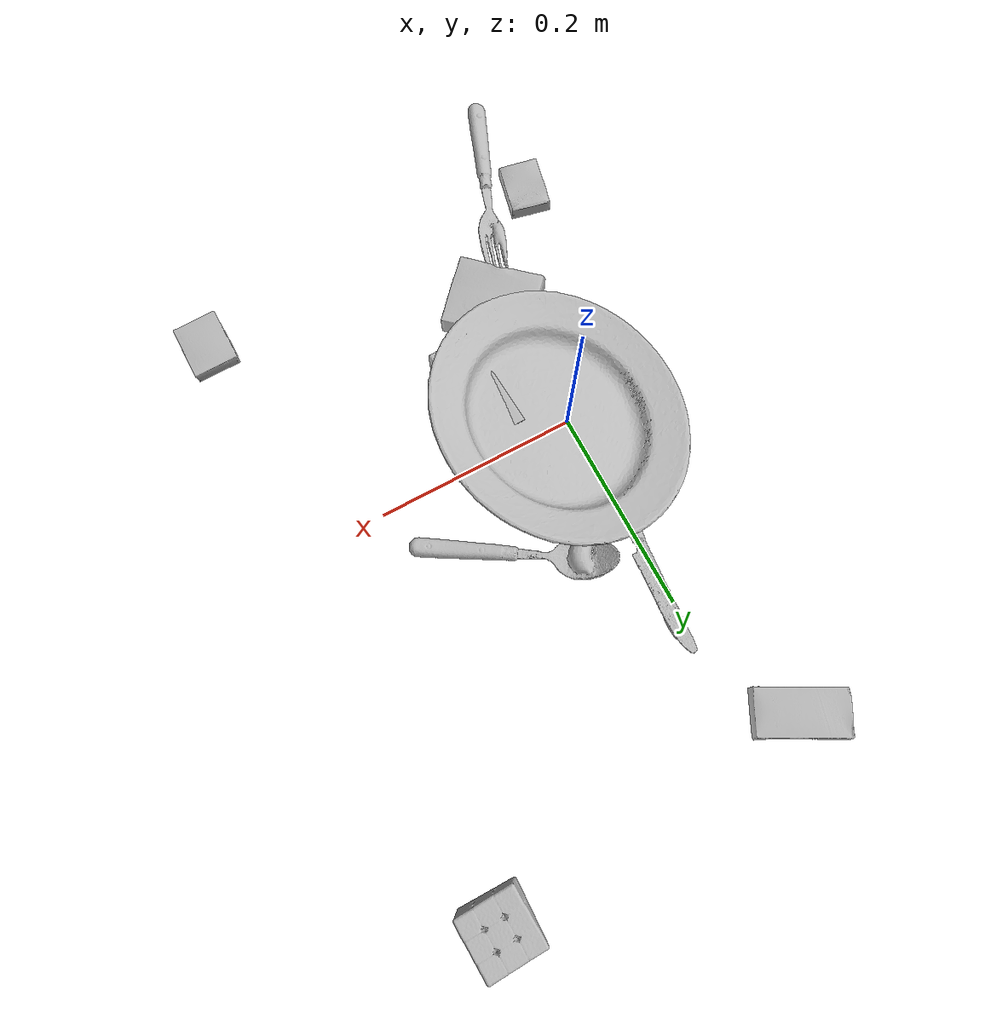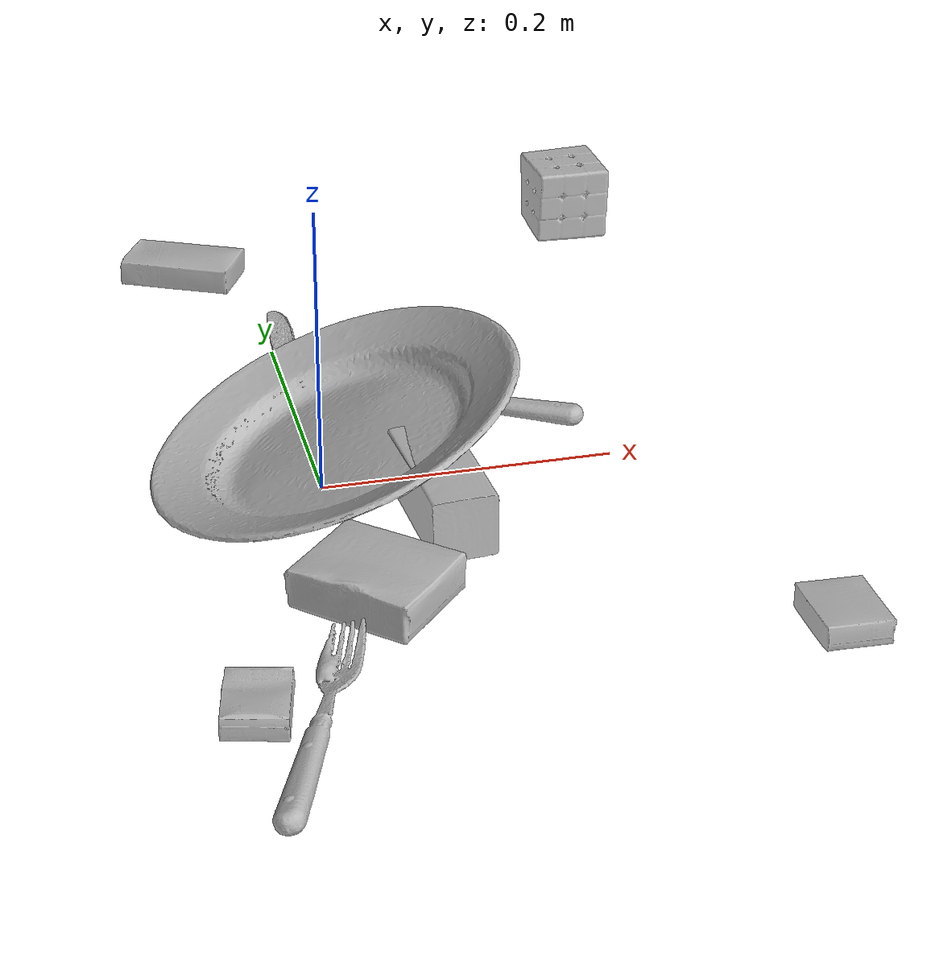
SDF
<sdf version="1.4">
  <world name="default">
    <light name="light1" type="point">
      <pose>0 0 1 0 0 0</pose>
      <diffuse>3 3 3 1</diffuse>
      <specular>3 3 3 1</specular>
    </light>
    <light name="light2" type="point">
      <pose>0 0.5 2 0 0 0</pose>
      <diffuse>1 1 1 1</diffuse>
      <specular>1 1 1 1</specular>
    </light>
    <light name="light3" type="point">
      <pose>0 0.5 2 0 0 0</pose>
      <diffuse>3 3 3 1</diffuse>
      <specular>3 3 3 1</specular>
    </light>
    <scene>
      <ambient>0.7 0.7 0.7</ambient>
    </scene>
    <model name="box11">
      <link name="link_box11">
        <collision name="default">
          <geometry>
            <mesh>
              <uri>model://gelatin_box/collision_meshes/collision.obj</uri>
              <scale>1.0 1.0 1.0</scale>
            </mesh>
          </geometry>
          <surface>
            <friction>
              <ode>
                <mu>0.5</mu>
                <mu2>0.5</mu2>
              </ode>
            </friction>
          <contact>
        <ode>
            <max_vel>0</max_vel>
            <min_depth>0.0001</min_depth>
            <kp>1e8</kp>
        </ode>
    </contact></surface>
        </collision>
        <visual name="default">
          <geometry>
            <mesh>
              <uri>model://gelatin_box/visual_meshes/visual.dae</uri>
              <scale>1.0 1.0 1.0</scale>
            </mesh>
          </geometry>
        </visual>
        <inertial>
          <mass>0.25029057264328003</mass>
          <pose>0.0004319618456065655 0.00011156871914863586 -0.0003640321083366871 -0.0010503719874808634 -0.004755820553863559 0.01644055760983946</pose>
          <inertia>
            <ixx>0.00017668474</ixx>
            <iyy>0.000126205</iyy>
            <izz>0.00026895347</izz>
            <ixy>0</ixy>
            <ixz>0</ixz>
            <iyz>0</iyz>
          </inertia>
        </inertial>
      </link>
      <pose>0.00785162951797247 -0.13989460468292236 0.015168306417763233 0.005597503431318101 -0.0073046120928929315 -2.3266884368835656</pose>
    </model>
    <model name="box12">
      <link name="link_box12">
        <collision name="default">
          <geometry>
            <mesh>
              <uri>model://rubiks_cube/collision_meshes/collision.obj</uri>
              <scale>1.0 1.0 1.0</scale>
            </mesh>
          </geometry>
          <surface>
            <friction>
              <ode>
                <mu>0.5</mu>
                <mu2>0.5</mu2>
              </ode>
            </friction>
          <contact>
        <ode>
            <max_vel>0</max_vel>
            <min_depth>0.0001</min_depth>
            <kp>1e8</kp>
        </ode>
    </contact></surface>
        </collision>
        <visual name="default">
          <geometry>
            <mesh>
              <uri>model://rubiks_cube/visual_meshes/visual.dae</uri>
              <scale>1.0 1.0 1.0</scale>
            </mesh>
          </geometry>
        </visual>
        <inertial>
          <mass>0.21638615429401398</mass>
          <pose>2.6721043468569405e-05 5.2569666877388954e-05 -7.264316536748083e-06 -0.054671974778446215 -0.0981397652693683 -0.03445575269454635</pose>
          <inertia>
            <ixx>0.00011956789</ixx>
            <iyy>0.00011901029</iyy>
            <izz>0.00012055871</izz>
            <ixy>0</ixy>
            <ixz>0</ixz>
            <iyz>0</iyz>
          </inertia>
        </inertial>
      </link>
      <pose>0.2703460156917572 0.36891719698905945 0.028678948059678078 -3.7550410050518016e-06 -1.2646129962153262e-06 1.6015671220579588</pose>
    </model>
    <model name="box13">
      <link name="link_box13">
        <collision name="default">
          <geometry>
            <mesh>
              <uri>model://pudding_box/collision_meshes/collision.obj</uri>
              <scale>0.5 0.5 0.5</scale>
            </mesh>
          </geometry>
          <surface>
            <friction>
              <ode>
                <mu>0.5</mu>
                <mu2>0.5</mu2>
              </ode>
            </friction>
          <contact>
        <ode>
            <max_vel>0</max_vel>
            <min_depth>0.0001</min_depth>
            <kp>1e8</kp>
        </ode>
    </contact></surface>
        </collision>
        <visual name="default">
          <geometry>
            <mesh>
              <uri>model://pudding_box/visual_meshes/visual.dae</uri>
              <scale>0.5 0.5 0.5</scale>
            </mesh>
          </geometry>
        </visual>
        <inertial>
          <mass>0.024692855775356293</mass>
          <pose>0.00024474109522998333 0.00040339428232982755 -0.0002594413817860186 0.005213102294063647 -0.006603794537377036 0.020079827031592012</pose>
          <inertia>
            <ixx>6.9785e-06</ixx>
            <iyy>4.695185e-06</iyy>
            <izz>1.030558e-05</izz>
            <ixy>0</ixy>
            <ixz>0</ixz>
            <iyz>0</iyz>
          </inertia>
        </inertial>
      </link>
      <pose>0.2776681184768677 -0.23407530784606934 0.009862902574241161 0.022349734692141302 -0.011390910028828163 -3.1414140519862666</pose>
    </model>
    <model name="box21">
      <link name="link_box21">
        <collision name="default">
          <geometry>
            <mesh>
              <uri>model://wood_block/collision_meshes/collision.obj</uri>
              <scale>0.5 0.5 0.5</scale>
            </mesh>
          </geometry>
          <surface>
            <friction>
              <ode>
                <mu>0.5</mu>
                <mu2>0.5</mu2>
              </ode>
            </friction>
          <contact>
        <ode>
            <max_vel>0</max_vel>
            <min_depth>0.0001</min_depth>
            <kp>1e8</kp>
        </ode>
    </contact></surface>
        </collision>
        <visual name="default">
          <geometry>
            <mesh>
              <uri>model://wood_block/visual_meshes/visual.dae</uri>
              <scale>0.5 0.5 0.5</scale>
            </mesh>
          </geometry>
        </visual>
        <inertial>
          <mass>0.2621258497238159</mass>
          <pose>-2.9066577553749084e-06 -0.000285404734313488 0.00013204291462898254 -0.05220799390803197 -0.005192696360797016 -0.006861376940793837</pose>
          <inertia>
            <ixx>8.7691005e-05</ixx>
            <iyy>0.00027701593</iyy>
            <izz>0.00027597975</izz>
            <ixy>0</ixy>
            <ixz>0</ixz>
            <iyz>0</iyz>
          </inertia>
        </inertial>
      </link>
      <pose>0.06877264380455017 -0.058406632393598557 0.022629575803875923 -0.005256568899896703 0.0057251442459172 1.6407323502353273</pose>
    </model>
    <model name="box22">
      <link name="link_box22">
        <collision name="default">
          <geometry>
            <mesh>
              <uri>model://cracker_box/collision_meshes/collision.obj</uri>
              <scale>0.25 0.25 0.25</scale>
            </mesh>
          </geometry>
          <surface>
            <friction>
              <ode>
                <mu>0.5</mu>
                <mu2>0.5</mu2>
              </ode>
            </friction>
          <contact>
        <ode>
            <max_vel>0</max_vel>
            <min_depth>0.0001</min_depth>
            <kp>1e8</kp>
        </ode>
    </contact></surface>
        </collision>
        <visual name="default">
          <geometry>
            <mesh>
              <uri>model://cracker_box/visual_meshes/visual.dae</uri>
              <scale>0.25 0.25 0.25</scale>
            </mesh>
          </geometry>
        </visual>
        <inertial>
          <mass>0.04544714838266373</mass>
          <pose>0.0002366049593547359 6.358561950037256e-05 -0.0004257383698131889 -0.0003162075981767565 -0.011106493326025165 0.0025467940711340945</pose>
          <inertia>
            <ixx>7.224829e-06</ixx>
            <iyy>1.1929612e-05</iyy>
            <izz>1.702465e-05</izz>
            <ixy>0</ixy>
            <ixz>0</ixz>
            <iyz>0</iyz>
          </inertia>
        </inertial>
      </link>
      <pose>-0.08311299234628677 -0.24315905570983887 0.009096027351915836 -0.01405103756281322 -0.005016021710679996 -1.7899990964521861</pose>
    </model>
    <model name="box23">
      <link name="link_box23">
        <collision name="default">
          <geometry>
            <mesh>
              <uri>model://sugar_box/collision_meshes/collision.obj</uri>
              <scale>0.5 0.5 0.5</scale>
            </mesh>
          </geometry>
          <surface>
            <friction>
              <ode>
                <mu>0.5</mu>
                <mu2>0.5</mu2>
              </ode>
            </friction>
          <contact>
        <ode>
            <max_vel>0</max_vel>
            <min_depth>0.0001</min_depth>
            <kp>1e8</kp>
        </ode>
    </contact></surface>
        </collision>
        <visual name="default">
          <geometry>
            <mesh>
              <uri>model://sugar_box/visual_meshes/visual.dae</uri>
              <scale>0.5 0.5 0.5</scale>
            </mesh>
          </geometry>
        </visual>
        <inertial>
          <mass>0.08974423259496689</mass>
          <pose>0.0005171863595023751 1.924554817378521e-05 -0.00018182402709499002 -0.00040462647498757867 0.0010506636387592515 0.0026153785559760484</pose>
          <inertia>
            <ixx>1.869366e-05</ixx>
            <iyy>6.0421757e-05</iyy>
            <izz>7.233205e-05</izz>
            <ixy>0</ixy>
            <ixz>0</ixz>
            <iyz>0</iyz>
          </inertia>
        </inertial>
      </link>
      <pose>-0.047081731259822845 0.3397361934185028 0.011399299837648869 0.0007754417692254751 -0.023433283202476674 -0.49534472452894335</pose>
    </model>
    <model name="plate1">
      <link name="link_plate1">
        <collision name="default">
          <geometry>
            <mesh>
              <uri>model://plate/collision_meshes/collision.obj</uri>
              <scale>1.0 1.0 1.0</scale>
            </mesh>
          </geometry>
          <surface>
            <friction>
              <ode>
                <mu>0.5</mu>
                <mu2>0.5</mu2>
              </ode>
            </friction>
          <contact>
        <ode>
            <max_vel>0</max_vel>
            <min_depth>0.0001</min_depth>
            <kp>1e8</kp>
        </ode>
    </contact></surface>
        </collision>
        <visual name="default">
          <geometry>
            <mesh>
              <uri>model://plate/visual_meshes/visual.dae</uri>
              <scale>1.0 1.0 1.0</scale>
            </mesh>
          </geometry>
        </visual>
        <inertial>
          <mass>0.25075921416282654</mass>
          <pose>-0.0006044597248546779 0.00027825814322568476 -0.0010562010575085878 0.0022187872861569474 -0.003225478732834207 0.4526086398584511</pose>
          <inertia>
            <ixx>0.0011730565</ixx>
            <iyy>0.0011618367</iyy>
            <izz>0.0022943232</izz>
            <ixy>0</ixy>
            <ixz>0</ixz>
            <iyz>0</iyz>
          </inertia>
        </inertial>
      </link>
      <pose>0.012199325487017632 0.0032884888350963593 0.04029906913638115 -0.3272917666913865 -0.12632888920137453 1.058209289885429</pose>
    </model>
    <model name="silverware1">
      <link name="link_silverware1">
        <collision name="default">
          <geometry>
            <mesh>
              <uri>model://spoon/collision_meshes/collision.obj</uri>
              <scale>1.0 1.0 1.0</scale>
            </mesh>
          </geometry>
          <surface>
            <friction>
              <ode>
                <mu>0.5</mu>
                <mu2>0.5</mu2>
              </ode>
            </friction>
          <contact>
        <ode>
            <max_vel>0</max_vel>
            <min_depth>0.0001</min_depth>
            <kp>1e8</kp>
        </ode>
    </contact></surface>
        </collision>
        <visual name="default">
          <geometry>
            <mesh>
              <uri>model://spoon/visual_meshes/visual.dae</uri>
              <scale>1.0 1.0 1.0</scale>
            </mesh>
          </geometry>
        </visual>
        <inertial>
          <mass>0.036317918449640274</mass>
          <pose>-0.005526306107640266 -0.0016034167492762208 -0.0007271648501046002 0.03521625205726148 -0.039065835985121374 0.0061506181118877856</pose>
          <inertia>
            <ixx>2.0200612e-06</ixx>
            <iyy>0.00013818844</iyy>
            <izz>0.00013918467</izz>
            <ixy>0</ixy>
            <ixz>0</ixz>
            <iyz>0</iyz>
          </inertia>
        </inertial>
      </link>
      <pose>0.10709074884653091 0.09014059603214264 0.008385264314711094 0.006729808594407604 0.026892997244772576 2.5845400743361595</pose>
    </model>
    <model name="silverware2">
      <link name="link_silverware2">
        <collision name="default">
          <geometry>
            <mesh>
              <uri>model://knife/collision_meshes/collision.obj</uri>
              <scale>1.0 1.0 1.0</scale>
            </mesh>
          </geometry>
          <surface>
            <friction>
              <ode>
                <mu>0.5</mu>
                <mu2>0.5</mu2>
              </ode>
            </friction>
          <contact>
        <ode>
            <max_vel>0</max_vel>
            <min_depth>0.0001</min_depth>
            <kp>1e8</kp>
        </ode>
    </contact></surface>
        </collision>
        <visual name="default">
          <geometry>
            <mesh>
              <uri>model://knife/visual_meshes/visual.dae</uri>
              <scale>1.0 1.0 1.0</scale>
            </mesh>
          </geometry>
        </visual>
        <inertial>
          <mass>0.03166225552558899</mass>
          <pose>-0.02378525584936142 0.0015275123296305537 5.0620161346159875e-05 0.07305183970819301 0.01724842094470774 -0.007409827313526415</pose>
          <inertia>
            <ixx>8.9870355e-07</ixx>
            <iyy>0.00012164128</iyy>
            <izz>0.00012193073</izz>
            <ixy>0</ixy>
            <ixz>0</ixz>
            <iyz>0</iyz>
          </inertia>
        </inertial>
      </link>
      <pose>0.0028683915734291077 0.14263181388378143 0.00814029574394226 -0.2628473431050157 -0.009317836678346491 1.493923722898039</pose>
    </model>
    <model name="silverware3">
      <link name="link_silverware3">
        <collision name="default">
          <geometry>
            <mesh>
              <uri>model://fork/collision_meshes/collision.obj</uri>
              <scale>1.0 1.0 1.0</scale>
            </mesh>
          </geometry>
          <surface>
            <friction>
              <ode>
                <mu>0.5</mu>
                <mu2>0.5</mu2>
              </ode>
            </friction>
          <contact>
        <ode>
            <max_vel>0</max_vel>
            <min_depth>0.0001</min_depth>
            <kp>1e8</kp>
        </ode>
    </contact></surface>
        </collision>
        <visual name="default">
          <geometry>
            <mesh>
              <uri>model://fork/visual_meshes/visual.dae</uri>
              <scale>1.0 1.0 1.0</scale>
            </mesh>
          </geometry>
        </visual>
        <inertial>
          <mass>0.03018845245242119</mass>
          <pose>-0.029570050537586212 0.00046588227269239724 0.00032188609475269914 -0.013551782414775644 -0.010977841906558662 0.014453907874592884</pose>
          <inertia>
            <ixx>1.0582761e-06</ixx>
            <iyy>7.881335e-05</iyy>
            <izz>7.928668e-05</izz>
            <ixy>0</ixy>
            <ixz>0</ixz>
            <iyz>0</iyz>
          </inertia>
        </inertial>
      </link>
      <pose>-0.049673549830913544 -0.2657374441623688 0.005734588019549847 -0.1878473467007384 0.024361734253128393 1.1947388437715296</pose>
    </model>
  <physics type="ode">
      <max_contacts>50</max_contacts>
      <ode>
        <solver>
          <type>quick</type>
          <iters>75</iters>
        </solver>
        <constraints>
          <contact_max_correcting_vel>0</contact_max_correcting_vel>
          <contact_surface_layer>0</contact_surface_layer>
        </constraints>
      </ode>
    </physics></world>
</sdf>
